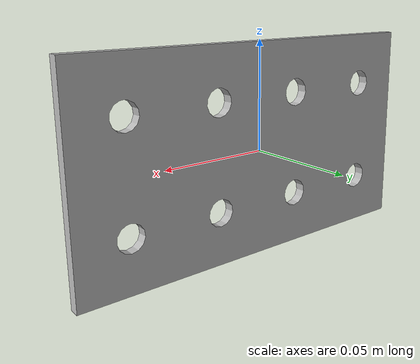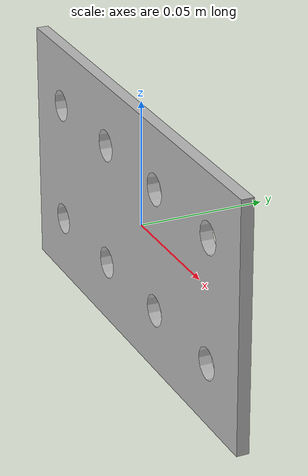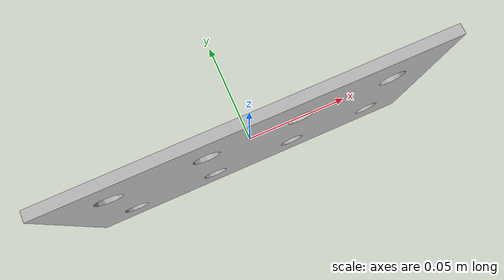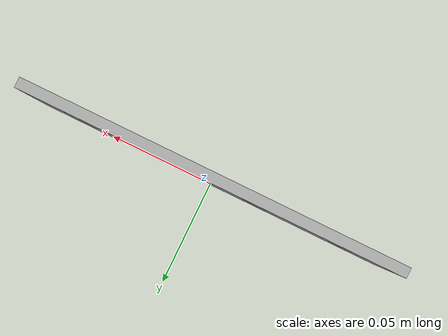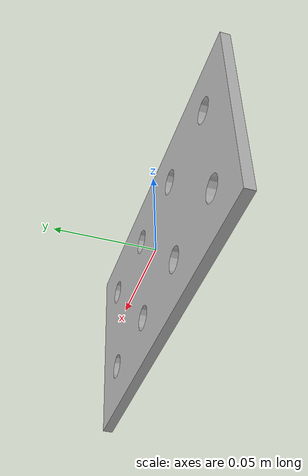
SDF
<?xml version='1.0'?>
<sdf version='1.4'>
  <model name="FGAG1003_PLACA_AGUJEREADA_2">
 <static>false</static>
 <link name="mesh_link">
	<inertial>
            <mass>100.0</mass>
 	</inertial>
        <visual name="visual">
        <geometry>
            <mesh><uri>model://FGAG1003_PLACA_AGUJEREADA_2/meshes/FGAG1003_PLACA_AGUJEREADA_2.stl</uri></mesh>
          </geometry>
        </visual>
        <collision name="collision">
          <geometry>
            <mesh><uri>model://FGAG1003_PLACA_AGUJEREADA_2/meshes/FGAG1003_PLACA_AGUJEREADA_2.stl</uri></mesh>
          </geometry>
        </collision>
      </link>
  </model>
</sdf>
